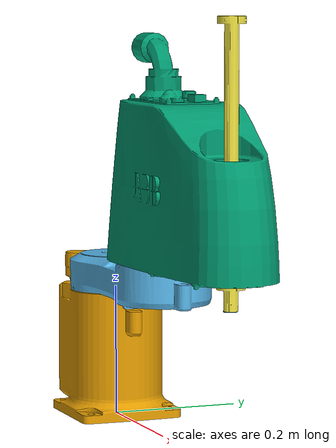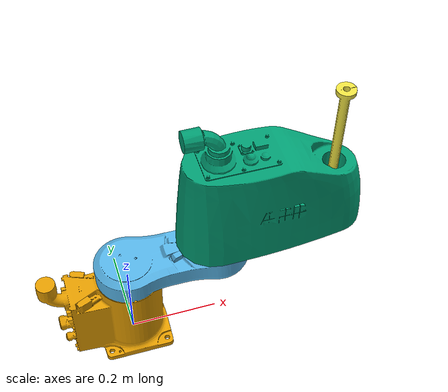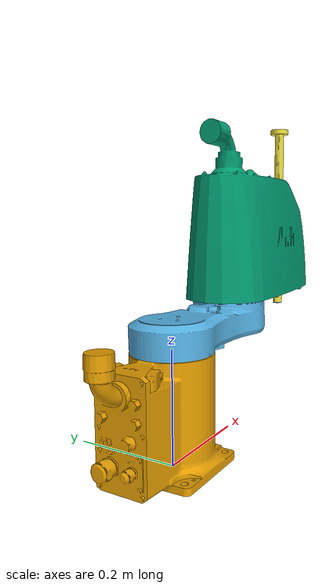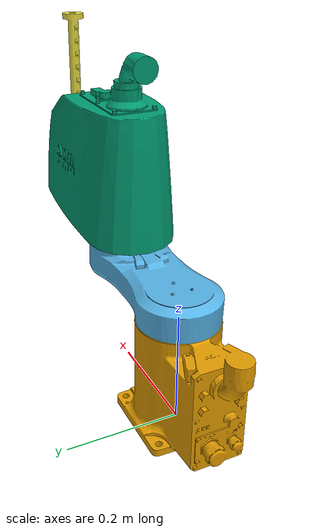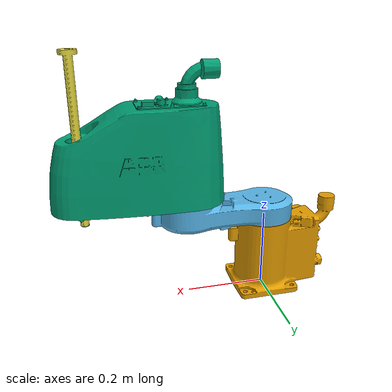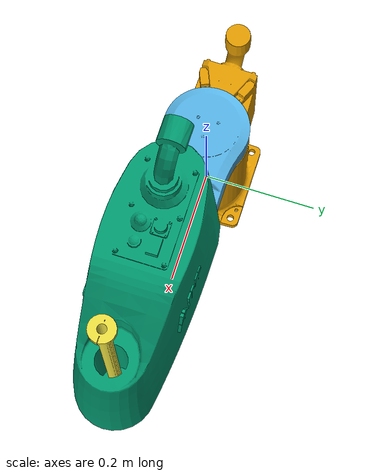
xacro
<?xml version="1.0"?>
<robot xmlns:xacro="http://www.ros.org/wiki/xacro" name="abb_irb910sc_3_45">
    <xacro:arg name="initial_positions_file" default="initial_positions.yaml" />

    <!-- Import abb_irb910sc_3_45 urdf file -->
    <xacro:include filename="$(find abb_irb910sc_support)/urdf/irb910sc_3_45.xacro" />

    <!-- Import control_xacro -->
    <xacro:include filename="abb_irb910sc_3_45.ros2_control.xacro" />

    <xacro:abb_irb910sc_3_45_ros2_control name="FakeSystem" initial_positions_file="$(arg initial_positions_file)"/>

</robot>

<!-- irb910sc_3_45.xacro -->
<robot name="abb_irb910sc_3_45" xmlns:xacro="http://ros.org/wiki/xacro">
  <xacro:arg name="use_fake_hardware" default="true"/>
  <xacro:property name="use_fake_hardware" value="$(arg use_fake_hardware)"/>
  <xacro:arg name="rws_ip" default="None"/>
  <xacro:property name="rws_ip" value="$(arg rws_ip)"/>
  <xacro:arg name="rws_port" default="80"/>
  <xacro:property name="rws_port" value="$(arg rws_port)"/>
  <!-- Robot description -->
  <xacro:include filename="$(find abb_irb910sc_support)/urdf/irb910sc_3_45_macro.xacro"/>
  <xacro:abb_irb910sc_3_45 prefix=""/>

  <!-- ros2_control -->
  <xacro:include filename="$(find abb_irb910sc_support)/urdf/irb910sc.ros2_control.xacro" />
  <xacro:abb_ros2_control
    name="ABBMultiInterfaceHardware"
    prefix=""
    use_fake_hardware="${use_fake_hardware}"
    rws_ip="${rws_ip}"
    rws_port="${rws_port}"/>
</robot>

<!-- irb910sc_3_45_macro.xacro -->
<robot xmlns:xacro="http://ros.org/wiki/xacro">
  <xacro:include filename="$(find abb_resources)/urdf/common_materials.xacro"/>

  <xacro:macro name="abb_irb910sc_3_45" params="prefix">
    <!-- link list -->
    <link name="${prefix}base_link">
      <visual name="visual">
        <geometry>
          <mesh filename="package://abb_irb910sc_support/meshes/irb910sc_3_45/visual/base_link.stl"/>
        </geometry>
        <xacro:material_abb_white />
      </visual>
      <collision>
        <geometry>
          <mesh filename="package://abb_irb910sc_support/meshes/irb910sc_3_45/collision/base_link.stl"/>
        </geometry>
        <xacro:material_abb_yellow />
      </collision>
    </link>
    <link name="${prefix}link_1">
      <visual>
        <geometry>
          <mesh filename="package://abb_irb910sc_support/meshes/irb910sc_3_45/visual/link_1.stl"/>
        </geometry>
        <xacro:material_abb_white />
      </visual>
      <collision>
        <geometry>
          <mesh filename="package://abb_irb910sc_support/meshes/irb910sc_3_45/collision/link_1.stl"/>
        </geometry>
        <xacro:material_abb_yellow />
      </collision>
    </link>
    <link name="${prefix}link_2">
      <visual>
        <geometry>
          <mesh filename="package://abb_irb910sc_support/meshes/irb910sc_3_45/visual/link_2.stl"/>
        </geometry>
        <xacro:material_abb_white />
      </visual>
      <collision>
        <geometry>
          <mesh filename="package://abb_irb910sc_support/meshes/irb910sc_3_45/collision/link_2.stl"/>
        </geometry>
        <xacro:material_abb_yellow />
      </collision>
    </link>
    <link name="${prefix}link_3">
      <visual>
        <geometry>
          <mesh filename="package://abb_irb910sc_support/meshes/irb910sc_3_45/visual/link_3.stl"/>
        </geometry>
        <xacro:material_abb_white />
      </visual>
      <collision>
        <geometry>
          <mesh filename="package://abb_irb910sc_support/meshes/irb910sc_3_45/collision/link_3.stl"/>
        </geometry>
        <xacro:material_abb_yellow />
      </collision>
    </link>
    <link name="${prefix}link_4">
      <visual>
        <origin xyz="0.0 0.0 0.0" rpy="0 0 0"/>
        <geometry>
           <cylinder radius="0.01" length="0.001" />
        </geometry>
        <xacro:material_abb_white />
      </visual>
      <collision>
        <origin xyz="0.0 0.0 0.0" rpy="0 0 0"/>
        <geometry>
           <cylinder radius="0.01" length="0.001" />
        </geometry>
        <xacro:material_abb_yellow />
      </collision>
      <inertial>
        <mass value="0.0001"/>
        <inertia ixx="1e-08" ixy="0" ixz="0" iyy="1e-08" iyz="0" izz="1e-08"/>
      </inertial>
    </link>
    <!-- end of link list -->

    <!-- joint list -->
    <joint name="${prefix}joint_1" type="revolute">
      <origin xyz="0 0 0.1947" rpy="0 0 0"/>
      <parent link="${prefix}base_link"/>
      <child link="${prefix}link_1"/>
      <axis xyz="0 0 1"/>
      <limit lower="${radians(-140)}" upper="${radians(140)}" effort="1000" velocity="${radians(415)}"/>
      <dynamics damping="10.0" friction="1.0"/>
    </joint>
    <joint name="${prefix}joint_2" type="revolute">
      <origin xyz="0.200123 0 0.068" rpy="0 0 0"/>
      <parent link="${prefix}link_1"/>
      <child link="${prefix}link_2"/>
      <axis xyz="0 0 1"/>
      <!-- Note: Original limits are [-150, 150] -->
      <limit lower="${radians(-150)}" upper="${radians(0)}" effort="1000" velocity="${radians(659)}"/>
      <dynamics damping="2.0" friction="1.0"/>
    </joint>
    <joint name="${prefix}joint_3" type="prismatic">
      <origin xyz="0.250 0 0.358185" rpy="0 0 0"/>
      <parent link="${prefix}link_2"/>
      <child link="${prefix}link_3"/>
      <axis xyz="0 0 1"/>
      <limit lower="-0.18" upper="0.0" effort="1000" velocity="1.0"/>
      <dynamics damping="2.0" friction="1.0"/>
    </joint>
    <joint name="${prefix}joint_4" type="revolute">
      <origin xyz="0 0 -0.4" rpy="${radians(180)} 0 ${radians(180)}"/>
      <parent link="${prefix}link_3"/>
      <child link="${prefix}link_4"/>
      <axis xyz="0 0 1"/>
      <!-- Note: Original limits are [-400, 400] -->
      <limit lower="${radians(-180)}" upper="${radians(180)}" effort="1000" velocity="${radians(2400)}"/>
      <dynamics damping="2.0" friction="1.0"/>
    </joint>
    <!-- end of joint list -->

    <!-- ROS-Industrial 'base' frame: base_link to ABB World Coordinates transform -->
    <link name="${prefix}base" />
    <joint name="${prefix}base_link-base" type="fixed">
      <origin xyz="0 0 0" rpy="0 0 0"/>
      <parent link="${prefix}base_link"/>
      <child link="${prefix}base"/>
    </joint>

    <!-- ROS-Industrial 'flange' frame: attachment point for EEF models -->
    <link name="${prefix}flange"/>
    <joint type="fixed" name="${prefix}joint_4-flange">
      <origin xyz="0 0 0" rpy="0 0 0"/>
      <parent link="${prefix}link_4"/>
      <child link="${prefix}flange"/>
    </joint>

    <!-- ROS-Industrial 'tool0' frame: all-zeros tool frame -->
    <link name="${prefix}tool0" />
    <joint name="${prefix}link_4-tool0" type="fixed">
      <origin xyz="0 0 0" rpy="${radians(0)} 0 0" />
      <parent link="${prefix}flange" />
      <child link="${prefix}tool0" />
    </joint>
  </xacro:macro>
</robot>
